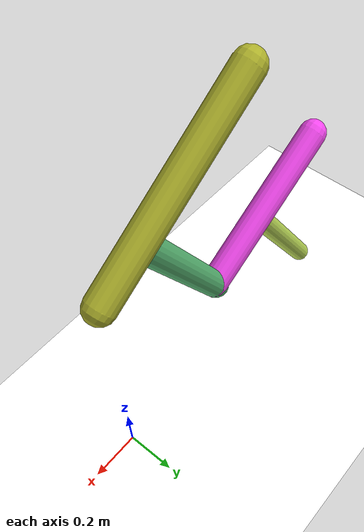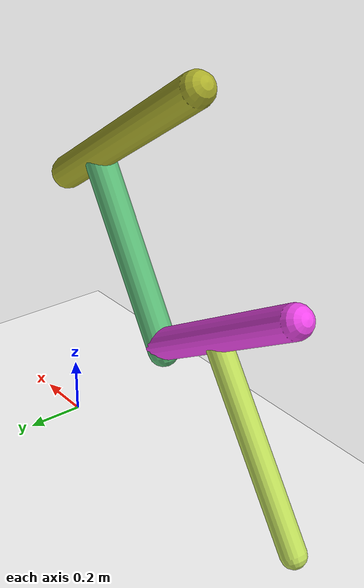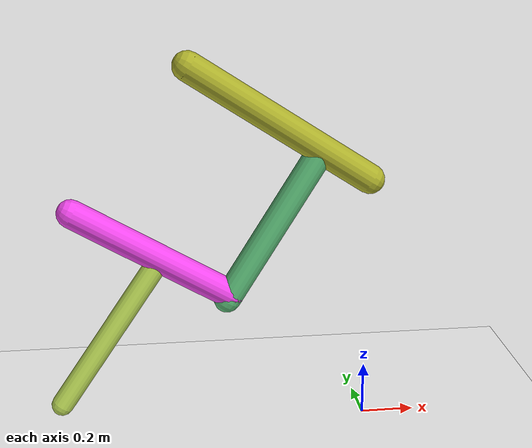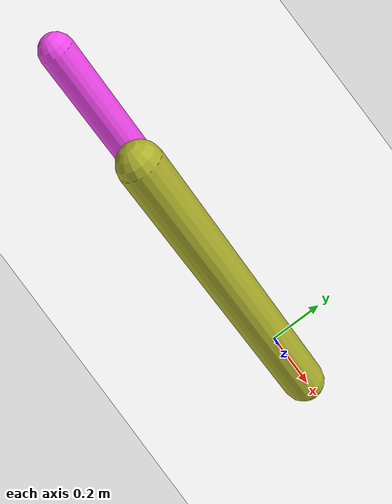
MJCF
<mujoco model="morphology">
  <option timestep="0.01"/>
  <default>
    <default class="/"/>
  </default>
  <asset>
    <texture name="texplane" type="2d" builtin="checker" rgb1="0.1 0.2 0.3" rgb2="0.2 0.3 0.4" width="300" height="300"/>
    <material name="MatPlane" class="/" texture="texplane" texrepeat="20 20" specular="1" shininess="1" reflectance="0.5"/>
  </asset>
  <worldbody>
    <light name="//unnamed_light_0" class="/" directional="true" pos="0 0 1.5" dir="0 0 -1.3" cutoff="1e+02" exponent="1" diffuse="1 1 1" specular="0.1 0.1 0.1"/>
    <geom name="ground" class="/" type="plane" size="15 15 0.5" material="MatPlane" rgba="1 1 1 1"/>
    <body name="body" pos="0 0 0.95">
      <geom name="geom0" class="/" type="capsule" contype="1" conaffinity="1" condim="3" size="0.056" rgba="0.68 0.69 0.17 1" friction="0.4 0.1 0.1" fromto="0 0 0 -0.67 0 0.44"/>
      <body name="body1" pos="-0.18 0 0.12">
        <geom name="geom1" class="/" type="capsule" contype="1" conaffinity="1" condim="3" size="0.051" rgba="0.36 0.74 0.47 1" friction="0.4 0.1 0.1" fromto="0 0 0 -0.35 0 -0.57"/>
        <body name="body2" pos="-0.34 0 -0.55">
          <geom name="geom2" class="/" type="capsule" contype="1" conaffinity="1" condim="3" size="0.053" rgba="0.95 0.28 0.93 1" friction="0.4 0.1 0.1" fromto="0 0 0 -0.58 0 0.34"/>
          <body name="body3" pos="-0.26 0 0.15">
            <geom name="geom3" class="/" type="capsule" contype="1" conaffinity="1" condim="3" size="0.042" rgba="0.75 0.87 0.35 1" friction="0.4 0.1 0.1" fromto="0 0 0 -0.38 0 -0.57"/>
            <joint name="joint3" class="/" type="hinge" axis="0 1 0" limited="true" stiffness="20" range="-46 46" armature="0.1" damping="2"/>
          </body>
          <joint name="joint2" class="/" type="hinge" axis="0 1 0" limited="true" stiffness="20" range="-60 60" armature="0.1" damping="2"/>
        </body>
        <joint name="joint1" class="/" type="hinge" axis="0 1 0" limited="true" stiffness="20" range="-32 32" armature="0.1" damping="2"/>
      </body>
      <joint name="rootx" class="/" type="slide" axis="1 0 0" limited="false" stiffness="0" armature="0" damping="0"/>
      <joint name="rootz" class="/" type="slide" axis="0 0 1" limited="false" stiffness="0" armature="0" damping="0"/>
      <joint name="rooty" class="/" type="hinge" axis="0 1 0" limited="false" stiffness="0" armature="0" damping="0"/>
    </body>
  </worldbody>
  <actuator>
    <motor name="motor3" class="/" ctrllimited="true" ctrlrange="-1 1" gear="1e+02" joint="joint3"/>
    <motor name="motor2" class="/" ctrllimited="true" ctrlrange="-1 1" gear="1.2e+02" joint="joint2"/>
    <motor name="motor1" class="/" ctrllimited="true" ctrlrange="-1 1" gear="2e+02" joint="joint1"/>
  </actuator>
  <sensor>
    <subtreelinvel name="velocity" body="body"/>
  </sensor>
</mujoco>
